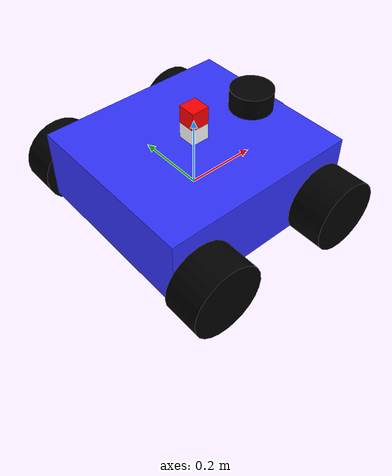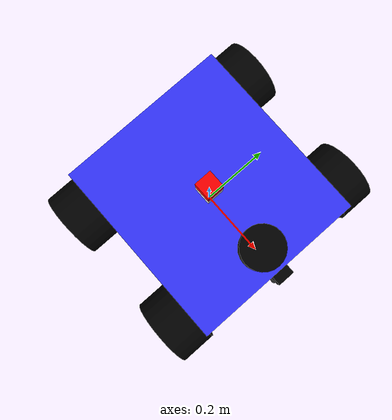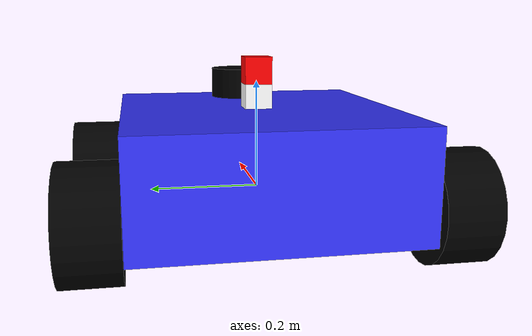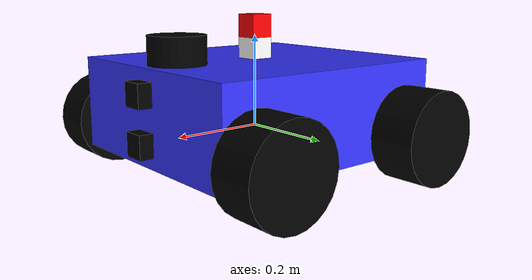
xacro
<?xml version='1.0'?>

<robot name="rover" xmlns:xacro="http://www.ros.org/wiki/xacro">
	<xacro:property name="robot_name" value="rover" />
	<xacro:property name="robot_chassis_mass" value="7"/>
	<xacro:property name="robot_chassis_length" value="0.2"/>
	<xacro:property name="robot_chassis_radius" value="0.25"/>

	<xacro:property name="robot_wheel_mass" value="1"/>
	<xacro:property name="robot_wheel_length" value="0.1"/>
	<xacro:property name="robot_wheel_radius" value="0.1"/>

	<xacro:property name="camera_mass" value="0.1"/>
	<xacro:property name="lidar_mass" value="1e-5"/>
	<xacro:property name="imu_mass" value="1e-5"/>
	<xacro:property name="gps_mass" value="1e-5"/>
	<xacro:property name="zed2_camera_mass" value="1e-5"/>

	<xacro:include filename="/home/aditi/ERC/leo_rover/urdf/rover.gazebo" />

	<!-- Materials-->

	  <material name="white">
	      <color rgba = "1 1 1 1"/>
	  </material>
	   <material name="orange">
	      <color rgba = "1 0.3 0.1 1"/>
	  </material>
	   <material name="blue">
	      <color rgba = "0.2 0.2 1 1"/>
	  </material>

	  <material name="black">
	      <color rgba = "0 0 0 1"/>
	  </material>

	  <material name="red">
	      <color rgba = "1 0 0 1"/>
	  </material>

	<!-- Chassis -->
	<link name="chassis">
		<pose>0 0 0.1 0 0 0</pose>

		<inertial>
			<mass value="${robot_chassis_mass}"/>
      		<origin xyz="0.0 0 0" rpy=" 0 0 0"/>

      		<inertia
      			ixx="0.147116667" ixy="0" ixz="0"
      			iyy="0.334951167" iyz="0"
      			izz="0.3978345"
      		/>
		</inertial>

		<collision name="collision">
			<origin xyz="0 0 0.05" rpy=" 0 0 0"/>
			<geometry>
				<box size="0.55 0.5 0.2"/>
			</geometry>
		</collision>

		<visual name="chassis_visual">
			<origin xyz="0 0 0.05" rpy=" 0 0 0"/>
			<geometry>
				<box size="0.55 0.5 0.2"/>
			</geometry>
			<material name="blue"/>
		</visual>

	</link>

	<!-- Right Wheel Back -->
	<link name="right_wheel_back">
		<inertial>
			<mass value="${robot_wheel_mass}"/>
			<origin xyz="0 0 0" rpy="0 1.5707 1.5707"/>
			<inertia
				ixx="0.1" ixy="0.0" ixz="0.0"
				iyy="0.1" iyz="0.0"
				izz="0.1"
			/>
		</inertial>

		<visual>
			<origin xyz="0 0 0" rpy="0 1.5707 1.5707"/>
			<geometry>
				<cylinder radius="${robot_wheel_radius}" length="${robot_wheel_length}"/>
			</geometry>
			<material name = "black"/>
		</visual>

		<collision>
			<origin xyz="0 0 0" rpy="0 1.5707 1.5707"/>
			<geometry>
				<cylinder radius="${robot_wheel_radius}" length="${robot_wheel_length}"/>
			</geometry>
		</collision>

	</link>

	<!-- Right Wheel Front-->
	<link name="right_wheel_front">
		<inertial>
			<mass value="${robot_wheel_mass}"/>
			<origin xyz="0 0 0" rpy="0 1.5707 1.5707"/>
			<inertia
				ixx="0.1" ixy="0.0" ixz="0.0"
				iyy="0.1" iyz="0.0"
				izz="0.1"
			/>
		</inertial>

		<visual>
			<origin xyz="0 0 0" rpy="0 1.5707 1.5707"/>
			<geometry>
				<cylinder radius="${robot_wheel_radius}" length="${robot_wheel_length}"/>
			</geometry>
			<material name = "black"/>
		</visual>

		<collision>
			<origin xyz="0 0 0" rpy="0 1.5707 1.5707"/>
			<geometry>
				<cylinder radius="${robot_wheel_radius}" length="${robot_wheel_length}"/>
			</geometry>
		</collision>

	</link>

	<!-- Left wheel Back-->
	<link name="left_wheel_back">
		<inertial>
			<mass value="${robot_wheel_mass}"/>
			<origin xyz="0 0 0" rpy="0 1.5707 1.5707"/>
			<inertia
				ixx="0.1" ixy="0.0" ixz="0.0"
				iyy="0.1" iyz="0.0"
				izz="0.1"
			/>
		</inertial>

		<visual>
			<origin xyz="0 0 0" rpy="0 1.5707 1.5707"/>
			<geometry>
				<cylinder radius="${robot_wheel_radius}" length="${robot_wheel_length}"/>
			</geometry>
			<material name = "black"/>
		</visual>

		<collision>
			<origin xyz="0 0 0" rpy="0 1.5707 1.5707"/>
			<geometry>
				<cylinder radius="${robot_wheel_radius}" length="${robot_wheel_length}"/>
			</geometry>
		</collision>

	</link>

	<!-- Left wheel Front-->
	<link name="left_wheel_front">
		<inertial>
			<mass value="${robot_wheel_mass}"/>
			<origin xyz="0 0 0" rpy="0 1.5707 1.5707"/>
			<inertia
				ixx="0.1" ixy="0.0" ixz="0.0"
				iyy="0.1" iyz="0.0"
				izz="0.1"
			/>
		</inertial>

		<visual>
			<origin xyz="0 0 0" rpy="0 1.5707 1.5707"/>
			<geometry>
				<cylinder radius="${robot_wheel_radius}" length="${robot_wheel_length}"/>
			</geometry>
			<material name = "black"/>
		</visual>

		<collision>
			<origin xyz="0 0 0" rpy="0 1.5707 1.5707"/>
			<geometry>
				<cylinder radius="${robot_wheel_radius}" length="${robot_wheel_length}"/>
			</geometry>
		</collision>

	</link>

	<!-- Camera -->
	<link name="camera">
		<inertial>
			<mass value="${camera_mass}"/>
			<origin xyz="0 0 0" rpy="0 0 0"/>
			<inertia
		        ixx="1e-6" ixy="0.0" ixz="0.0"
		        iyy="1e-6" iyz="0.0"
		        izz="1e-6"
		      />
		</inertial>

		<visual>
			<origin xyz="0 0 0" rpy="0 0 0"/>
			<geometry>
				<box size="0.05 0.05 0.05"/>
			</geometry>
			<material name = "black"/>
		</visual>

		<collision>
			<origin xyz="0 0 0" rpy="0 0 0"/>
			<geometry>
				<box size="0.05 0.05 0.05"/>
			</geometry>
		</collision>
	</link>

	<!-- lidar  -->
	<link name="lidar">
		<inertial>
			<mass value="${lidar_mass}"/>
			<origin xyz="0 0 0" rpy="0 0 0"/>

			<inertia
		        ixx="1e-6" ixy="0.0" ixz="0.0"
		        iyy="1e-6" iyz="0.0"
		        izz="1e-6"
		      />
		</inertial>

		<visual>
			<origin xyz="0 0 0" rpy="0 0 0"/>
			<geometry>
				<cylinder radius="0.06" length="0.08"/>
			</geometry>
			<material name="black"/>
		</visual>

		<collision>
			<origin xyz="0 0 0" rpy="0 0 0"/>
			<geometry>
				<cylinder radius="0.06" length="0.08"/>
			</geometry>
		</collision>
	</link>

	<!--imu-->
  <link name="imu">
    <inertial>
      <mass value="${imu_mass}"/>
      <origin xyz="0 0 0" rpy=" 0 0 0"/>

			<inertia
		        ixx="1e-6" ixy="0.0" ixz="0.0"
		        iyy="1e-6" iyz="0.0"
		        izz="1e-6"
		      />
    </inertial>

    <collision>
    <origin xyz="0 0 0" rpy=" 0 0 0"/>
      <geometry>
        <box size="0.05 0.05 0.05"/>
      </geometry>
    </collision>

    <visual>
      <geometry>
        <box size="0.05 0.05 0.05"/>
      </geometry>
	  <material name="white"/>
    </visual>

  </link>

	<!--gps-->
  <link name="gps">
    <inertial>
      <mass value="${gps_mass}"/>
      <origin xyz="0 0 0" rpy=" 0 0 0"/>

		<inertia
		    ixx="1e-6" ixy="0.0" ixz="0.0"
		    iyy="1e-6" iyz="0.0"
		    izz="1e-6"
		  />
    </inertial>

    <collision>
    <origin xyz="0 0 0" rpy=" 0 0 0"/>
      <geometry>
        <box size="0.05 0.05 0.05"/>
      </geometry>
    </collision>

    <visual>
      <geometry>
        <box size="0.05 0.05 0.05"/>
      </geometry>
	  <material name="red"/>
    </visual>

  </link>

  	<!--zed2-->

	<link name="zed2_camera">
		<inertial>
			<mass value="${zed2_camera_mass}"/>
			<origin xyz="0 0 0" rpy="0 0 0"/>
			<inertia
		        ixx="1e-6" ixy="0.0" ixz="0.0"
		        iyy="1e-6" iyz="0.0"
		        izz="1e-6"
		      />
		</inertial>

		<visual>
			<origin xyz="0 0 0" rpy="0 0 0"/>
			<geometry>
				<box size="0.05 0.05 0.05"/>
			</geometry>
			<material name = "black"/>
		</visual>

		<collision>
			<origin xyz="0 0 0" rpy="0 0 0"/>
			<geometry>
				<box size="0.05 0.05 0.05"/>
			</geometry>
		</collision>
	</link>

	<!--  robot center  -->
	<link name="robot_footprint"></link>

	<!--  Zed2 optical  -->
	<link name="zed2_optical"></link>

	<!-- Joints -->

	<!-- Right Wheel Joint Back-->
	<joint type="continuous" name="right_wheel_hinge_back">
	    <origin xyz="-0.2 -0.30 0" rpy="0 0 0" />
	    <parent link="chassis"/>
	    <child link="right_wheel_back" />
	    <axis xyz="0 1 0" rpy="0 0 0" />
	    <limit effort="10000" velocity="1000" />
	    <dynamics damping="1.0" friction="1.0" />
	</joint>

	<!-- Right Wheel Joint Front-->
	<joint type="continuous" name="right_wheel_hinge_front">
	    <origin xyz="0.2 -0.30 0" rpy="0 0 0" />
	    <parent link="chassis"/>
	    <child link="right_wheel_front" />
	    <axis xyz="0 1 0" rpy="0 0 0" />
	    <limit effort="10000" velocity="1000" />
	    <dynamics damping="1.0" friction="1.0" />
	</joint>

	<!-- Left Wheel Joint Back-->
	<joint type="continuous" name="left_wheel_hinge_back">
	    <origin xyz="-0.2 0.30 0" rpy="0 0 0" />
	    <parent link="chassis"/>
	    <child link="left_wheel_back" />
	    <axis xyz="0 1 0" rpy="0 0 0" />
	    <limit effort="10000" velocity="1000" />
	    <dynamics damping="1.0" friction="1.0" />
	</joint>

	<!-- Left Wheel Joint Front-->
	<joint type="continuous" name="left_wheel_hinge_front">
	    <origin xyz="0.2 0.30 0" rpy="0 0 0" />
	    <parent link="chassis"/>
	    <child link="left_wheel_front" />
	    <axis xyz="0 1 0" rpy="0 0 0" />
	    <limit effort="10000" velocity="1000" />
	    <dynamics damping="1.0" friction="1.0" />
	</joint>

	<!-- Camera Joint -->
	<joint name="camera_joint" type="fixed">
		<origin xyz="0.28 0 0.1" rpy="0 0 0" />
		<parent link="chassis"/>
		<child link="camera" />
		<axis xyz="0 1 0"/>
	</joint>

	<!-- Zed2 Joint -->
	<joint name="zed2_joint" type="fixed">
		<origin xyz="0.28 0 0.0" rpy="0 0 0" />
		<parent link="chassis"/>
		<child link="zed2_camera" />
		<axis xyz="0 1 0"/>
	</joint>
	<!-- Zed2 Optical Joint -->
  	<joint name="zed2_optical_joint" type="fixed">
  	  <origin xyz="0 0 0" rpy="${-pi/2} 0 ${-pi/2}"/>
  	  <parent link="zed2_camera"/>
  	  <child link="zed2_optical"/>
  	</joint>

	<!-- Lidar Joint -->
	<joint name="lidar_joint" type="fixed">
	    <origin xyz="0.2 0 0.17" rpy="0 0 0" />
	    <parent link="chassis"/>
	    <child link="lidar" />
	    <axis xyz="0 1 0"/>
	</joint>

	<joint name="robot_footprint_joint" type="fixed">
		<origin xyz="0 0 0" rpy="0 0 0" />
		<parent link="robot_footprint"/>
		<child link="chassis" />
	</joint>

	<!--IMU Joint -->
	<joint name="imu_joint" type="fixed">
    	<parent link="chassis"/>
    	<child link="imu"/>
    	<origin xyz="0 0 0.17"/>
  	</joint>
	<!--GPS Joint-->

  	<joint name="gps_joint" type="fixed">
    	<parent link="chassis"/>
    	<child link="gps"/>
    	<origin xyz="0 0 0.22"/>
  	</joint>

	<!-- Color -->
	<gazebo reference="left_wheel_front">
		<material>Gazebo/Black</material>
		<kp>1000000.0</kp> <!-- kp and kd for rubber -->
		<kd>100.0</kd>
		<mu1>1.0</mu1>
		<mu2>1.0</mu2>
		<maxVel>1.0</maxVel>
		<minDepth>0.00</minDepth>
	</gazebo>

	<gazebo reference="left_wheel_back">
		<material>Gazebo/Black</material>
		<kp>1000000.0</kp> <!-- kp and kd for rubber -->
		<kd>100.0</kd>
		<mu1>1.0</mu1>
		<mu2>1.0</mu2>
		<maxVel>1.0</maxVel>
		<minDepth>0.00</minDepth>
	</gazebo>

	<gazebo reference="right_wheel_front">
		<material>Gazebo/Black</material>
		<kp>1000000.0</kp> <!-- kp and kd for rubber -->
		<kd>100.0</kd>
		<mu1>1.0</mu1>
		<mu2>1.0</mu2>
		<maxVel>1.0</maxVel>
		<minDepth>0.00</minDepth>
	</gazebo>
	<gazebo reference="right_wheel_back">
		<material>Gazebo/Black</material>
		<kp>1000000.0</kp> <!-- kp and kd for rubber -->
		<kd>100.0</kd>
		<mu1>1.0</mu1>
		<mu2>1.0</mu2>
		<maxVel>1.0</maxVel>
		<minDepth>0.00</minDepth>
	</gazebo>

	<gazebo reference="camera">
		<material>Gazebo/Black</material>
	</gazebo>

	<gazebo reference="zed2_camera">
		<material>Gazebo/Black</material>
	</gazebo>

	<gazebo reference="lidar">
		<material>Gazebo/Black</material>
	</gazebo>

	<gazebo reference="gps">
		<material>Gazebo/Red</material>
	</gazebo>
	<gazebo reference="imu">
		<material>Gazebo/White</material>
	</gazebo>

	<gazebo reference="chassis">
		<material>Gazebo/Blue</material>
	</gazebo>

</robot>
